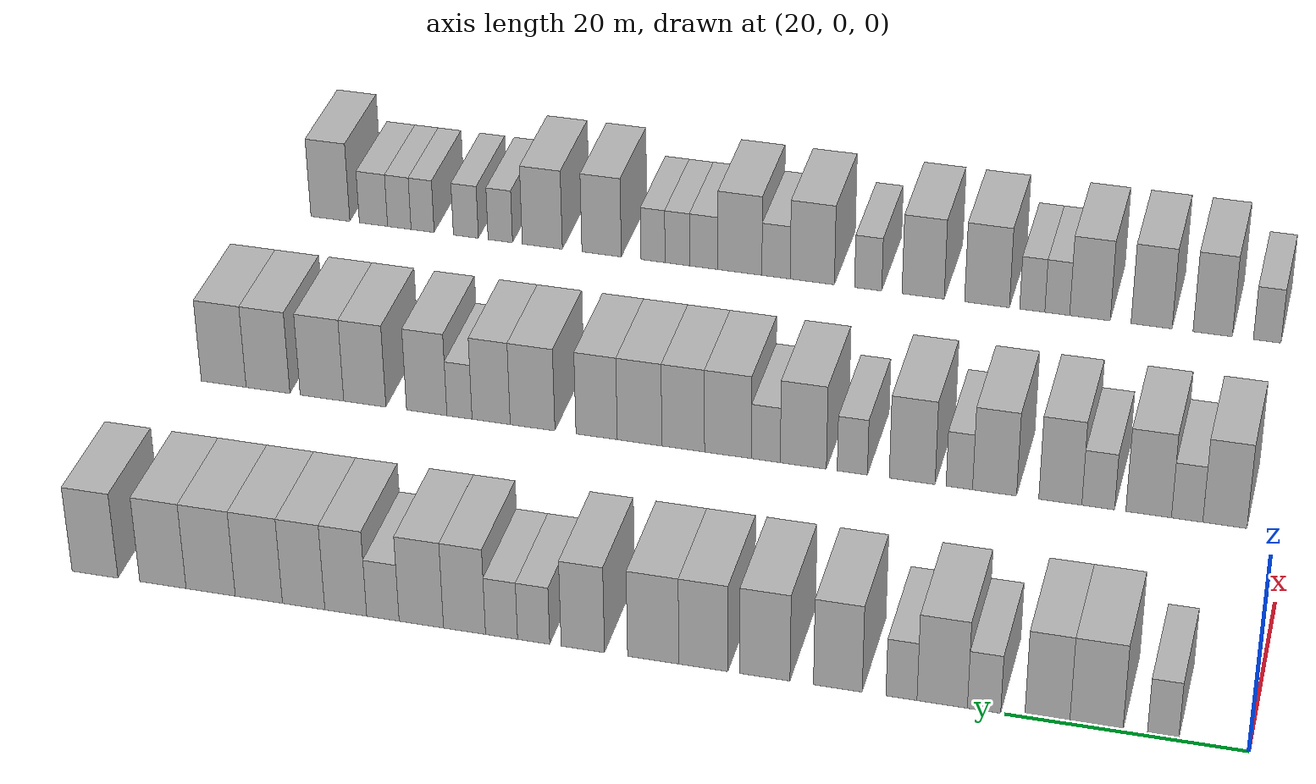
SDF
<sdf version="1.6">
 <world name="default">
  <model name="building_72">
   <static>1</static>
   <pose>25.0000 7.0259 0 0.000000 0.000000 0.000000</pose>
   <link name="link">
    <pose>0 0 3.00 0 0 0</pose>
    <collision name="collision"><geometry><box><size>10.0000 2.5747 6.0000</size></box></geometry></collision>
    <visual name="visual">
     <cast_shadows>0</cast_shadows>
     <geometry><box><size>10.0000 2.5747 6.0000</size></box></geometry>
     <material>
      <script>
       <uri>model://HANNAS_wall/materials/scripts</uri>
       <uri>model://HANNAS_wall/materials/textures</uri>
       <name>vrc/HANNAS_wall</name>
      </script>
     </material>
    </visual>
   </link>
  </model>
  <model name="building_73">
   <static>1</static>
   <pose>25.0000 12.4999 0 0.000000 0.000000 0.000000</pose>
   <link name="link">
    <pose>0 0 4.50 0 0 0</pose>
    <collision name="collision"><geometry><box><size>10.0000 4.3732 9.0000</size></box></geometry></collision>
    <visual name="visual">
     <cast_shadows>0</cast_shadows>
     <geometry><box><size>10.0000 4.3732 9.0000</size></box></geometry>
     <material>
      <script>
       <uri>model://HANNAS_wall/materials/scripts</uri>
       <uri>model://HANNAS_wall/materials/textures</uri>
       <name>vrc/HANNAS_wall</name>
      </script>
     </material>
    </visual>
   </link>
  </model>
  <model name="building_74">
   <static>1</static>
   <pose>25.0000 16.5477 0 0.000000 0.000000 0.000000</pose>
   <link name="link">
    <pose>0 0 4.50 0 0 0</pose>
    <collision name="collision"><geometry><box><size>10.0000 3.7223 9.0000</size></box></geometry></collision>
    <visual name="visual">
     <cast_shadows>0</cast_shadows>
     <geometry><box><size>10.0000 3.7223 9.0000</size></box></geometry>
     <material>
      <script>
       <uri>model://HANNAS_wall/materials/scripts</uri>
       <uri>model://HANNAS_wall/materials/textures</uri>
       <name>vrc/HANNAS_wall</name>
      </script>
     </material>
    </visual>
   </link>
  </model>
  <model name="building_75">
   <static>1</static>
   <pose>25.0000 21.7971 0 0.000000 0.000000 0.000000</pose>
   <link name="link">
    <pose>0 0 3.00 0 0 0</pose>
    <collision name="collision"><geometry><box><size>10.0000 2.7764 6.0000</size></box></geometry></collision>
    <visual name="visual">
     <cast_shadows>0</cast_shadows>
     <geometry><box><size>10.0000 2.7764 6.0000</size></box></geometry>
     <material>
      <script>
       <uri>model://HANNAS_wall/materials/scripts</uri>
       <uri>model://HANNAS_wall/materials/textures</uri>
       <name>vrc/HANNAS_wall</name>
      </script>
     </material>
    </visual>
   </link>
  </model>
  <model name="building_76">
   <static>1</static>
   <pose>25.0000 25.2983 0 0.000000 0.000000 0.000000</pose>
   <link name="link">
    <pose>0 0 4.50 0 0 0</pose>
    <collision name="collision"><geometry><box><size>10.0000 4.2261 9.0000</size></box></geometry></collision>
    <visual name="visual">
     <cast_shadows>0</cast_shadows>
     <geometry><box><size>10.0000 4.2261 9.0000</size></box></geometry>
     <material>
      <script>
       <uri>model://HANNAS_wall/materials/scripts</uri>
       <uri>model://HANNAS_wall/materials/textures</uri>
       <name>vrc/HANNAS_wall</name>
      </script>
     </material>
    </visual>
   </link>
  </model>
  <model name="building_77">
   <static>1</static>
   <pose>25.0000 28.7182 0 0.000000 0.000000 0.000000</pose>
   <link name="link">
    <pose>0 0 3.00 0 0 0</pose>
    <collision name="collision"><geometry><box><size>10.0000 2.6137 6.0000</size></box></geometry></collision>
    <visual name="visual">
     <cast_shadows>0</cast_shadows>
     <geometry><box><size>10.0000 2.6137 6.0000</size></box></geometry>
     <material>
      <script>
       <uri>model://HANNAS_wall/materials/scripts</uri>
       <uri>model://HANNAS_wall/materials/textures</uri>
       <name>vrc/HANNAS_wall</name>
      </script>
     </material>
    </visual>
   </link>
  </model>
  <model name="building_78">
   <static>1</static>
   <pose>25.0000 34.0914 0 0.000000 0.000000 0.000000</pose>
   <link name="link">
    <pose>0 0 4.50 0 0 0</pose>
    <collision name="collision"><geometry><box><size>10.0000 4.1329 9.0000</size></box></geometry></collision>
    <visual name="visual">
     <cast_shadows>0</cast_shadows>
     <geometry><box><size>10.0000 4.1329 9.0000</size></box></geometry>
     <material>
      <script>
       <uri>model://HANNAS_wall/materials/scripts</uri>
       <uri>model://HANNAS_wall/materials/textures</uri>
       <name>vrc/HANNAS_wall</name>
      </script>
     </material>
    </visual>
   </link>
  </model>
  <model name="building_79">
   <static>1</static>
   <pose>25.0000 40.3118 0 0.000000 0.000000 0.000000</pose>
   <link name="link">
    <pose>0 0 4.50 0 0 0</pose>
    <collision name="collision"><geometry><box><size>10.0000 4.3079 9.0000</size></box></geometry></collision>
    <visual name="visual">
     <cast_shadows>0</cast_shadows>
     <geometry><box><size>10.0000 4.3079 9.0000</size></box></geometry>
     <material>
      <script>
       <uri>model://HANNAS_wall/materials/scripts</uri>
       <uri>model://HANNAS_wall/materials/textures</uri>
       <name>vrc/HANNAS_wall</name>
      </script>
     </material>
    </visual>
   </link>
  </model>
  <model name="building_80">
   <static>1</static>
   <pose>25.0000 45.5788 0 0.000000 0.000000 0.000000</pose>
   <link name="link">
    <pose>0 0 4.50 0 0 0</pose>
    <collision name="collision"><geometry><box><size>10.0000 4.2260 9.0000</size></box></geometry></collision>
    <visual name="visual">
     <cast_shadows>0</cast_shadows>
     <geometry><box><size>10.0000 4.2260 9.0000</size></box></geometry>
     <material>
      <script>
       <uri>model://HANNAS_wall/materials/scripts</uri>
       <uri>model://HANNAS_wall/materials/textures</uri>
       <name>vrc/HANNAS_wall</name>
      </script>
     </material>
    </visual>
   </link>
  </model>
  <model name="building_81">
   <static>1</static>
   <pose>25.0000 49.9076 0 0.000000 0.000000 0.000000</pose>
   <link name="link">
    <pose>0 0 4.50 0 0 0</pose>
    <collision name="collision"><geometry><box><size>10.0000 4.4317 9.0000</size></box></geometry></collision>
    <visual name="visual">
     <cast_shadows>0</cast_shadows>
     <geometry><box><size>10.0000 4.4317 9.0000</size></box></geometry>
     <material>
      <script>
       <uri>model://HANNAS_wall/materials/scripts</uri>
       <uri>model://HANNAS_wall/materials/textures</uri>
       <name>vrc/HANNAS_wall</name>
      </script>
     </material>
    </visual>
   </link>
  </model>
  <model name="building_82">
   <static>1</static>
   <pose>25.0000 56.0168 0 0.000000 0.000000 0.000000</pose>
   <link name="link">
    <pose>0 0 4.50 0 0 0</pose>
    <collision name="collision"><geometry><box><size>10.0000 3.7868 9.0000</size></box></geometry></collision>
    <visual name="visual">
     <cast_shadows>0</cast_shadows>
     <geometry><box><size>10.0000 3.7868 9.0000</size></box></geometry>
     <material>
      <script>
       <uri>model://HANNAS_wall/materials/scripts</uri>
       <uri>model://HANNAS_wall/materials/textures</uri>
       <name>vrc/HANNAS_wall</name>
      </script>
     </material>
    </visual>
   </link>
  </model>
  <model name="building_83">
   <static>1</static>
   <pose>25.0000 60.3226 0 0.000000 0.000000 0.000000</pose>
   <link name="link">
    <pose>0 0 3.00 0 0 0</pose>
    <collision name="collision"><geometry><box><size>10.0000 2.8248 6.0000</size></box></geometry></collision>
    <visual name="visual">
     <cast_shadows>0</cast_shadows>
     <geometry><box><size>10.0000 2.8248 6.0000</size></box></geometry>
     <material>
      <script>
       <uri>model://HANNAS_wall/materials/scripts</uri>
       <uri>model://HANNAS_wall/materials/textures</uri>
       <name>vrc/HANNAS_wall</name>
      </script>
     </material>
    </visual>
   </link>
  </model>
  <model name="building_84">
   <static>1</static>
   <pose>25.0000 63.1462 0 0.000000 0.000000 0.000000</pose>
   <link name="link">
    <pose>0 0 3.00 0 0 0</pose>
    <collision name="collision"><geometry><box><size>10.0000 2.8224 6.0000</size></box></geometry></collision>
    <visual name="visual">
     <cast_shadows>0</cast_shadows>
     <geometry><box><size>10.0000 2.8224 6.0000</size></box></geometry>
     <material>
      <script>
       <uri>model://HANNAS_wall/materials/scripts</uri>
       <uri>model://HANNAS_wall/materials/textures</uri>
       <name>vrc/HANNAS_wall</name>
      </script>
     </material>
    </visual>
   </link>
  </model>
  <model name="building_85">
   <static>1</static>
   <pose>25.0000 66.4141 0 0.000000 0.000000 0.000000</pose>
   <link name="link">
    <pose>0 0 4.50 0 0 0</pose>
    <collision name="collision"><geometry><box><size>10.0000 3.7135 9.0000</size></box></geometry></collision>
    <visual name="visual">
     <cast_shadows>0</cast_shadows>
     <geometry><box><size>10.0000 3.7135 9.0000</size></box></geometry>
     <material>
      <script>
       <uri>model://HANNAS_wall/materials/scripts</uri>
       <uri>model://HANNAS_wall/materials/textures</uri>
       <name>vrc/HANNAS_wall</name>
      </script>
     </material>
    </visual>
   </link>
  </model>
  <model name="building_86">
   <static>1</static>
   <pose>25.0000 70.2426 0 0.000000 0.000000 0.000000</pose>
   <link name="link">
    <pose>0 0 4.50 0 0 0</pose>
    <collision name="collision"><geometry><box><size>10.0000 3.9434 9.0000</size></box></geometry></collision>
    <visual name="visual">
     <cast_shadows>0</cast_shadows>
     <geometry><box><size>10.0000 3.9434 9.0000</size></box></geometry>
     <material>
      <script>
       <uri>model://HANNAS_wall/materials/scripts</uri>
       <uri>model://HANNAS_wall/materials/textures</uri>
       <name>vrc/HANNAS_wall</name>
      </script>
     </material>
    </visual>
   </link>
  </model>
  <model name="building_87">
   <static>1</static>
   <pose>25.0000 73.6612 0 0.000000 0.000000 0.000000</pose>
   <link name="link">
    <pose>0 0 3.00 0 0 0</pose>
    <collision name="collision"><geometry><box><size>10.0000 2.8939 6.0000</size></box></geometry></collision>
    <visual name="visual">
     <cast_shadows>0</cast_shadows>
     <geometry><box><size>10.0000 2.8939 6.0000</size></box></geometry>
     <material>
      <script>
       <uri>model://HANNAS_wall/materials/scripts</uri>
       <uri>model://HANNAS_wall/materials/textures</uri>
       <name>vrc/HANNAS_wall</name>
      </script>
     </material>
    </visual>
   </link>
  </model>
  <model name="building_88">
   <static>1</static>
   <pose>25.0000 76.9845 0 0.000000 0.000000 0.000000</pose>
   <link name="link">
    <pose>0 0 4.50 0 0 0</pose>
    <collision name="collision"><geometry><box><size>10.0000 3.7528 9.0000</size></box></geometry></collision>
    <visual name="visual">
     <cast_shadows>0</cast_shadows>
     <geometry><box><size>10.0000 3.7528 9.0000</size></box></geometry>
     <material>
      <script>
       <uri>model://HANNAS_wall/materials/scripts</uri>
       <uri>model://HANNAS_wall/materials/textures</uri>
       <name>vrc/HANNAS_wall</name>
      </script>
     </material>
    </visual>
   </link>
  </model>
  <model name="building_89">
   <static>1</static>
   <pose>25.0000 80.7704 0 0.000000 0.000000 0.000000</pose>
   <link name="link">
    <pose>0 0 4.50 0 0 0</pose>
    <collision name="collision"><geometry><box><size>10.0000 3.8189 9.0000</size></box></geometry></collision>
    <visual name="visual">
     <cast_shadows>0</cast_shadows>
     <geometry><box><size>10.0000 3.8189 9.0000</size></box></geometry>
     <material>
      <script>
       <uri>model://HANNAS_wall/materials/scripts</uri>
       <uri>model://HANNAS_wall/materials/textures</uri>
       <name>vrc/HANNAS_wall</name>
      </script>
     </material>
    </visual>
   </link>
  </model>
  <model name="building_90">
   <static>1</static>
   <pose>25.0000 84.8143 0 0.000000 0.000000 0.000000</pose>
   <link name="link">
    <pose>0 0 4.50 0 0 0</pose>
    <collision name="collision"><geometry><box><size>10.0000 4.2689 9.0000</size></box></geometry></collision>
    <visual name="visual">
     <cast_shadows>0</cast_shadows>
     <geometry><box><size>10.0000 4.2689 9.0000</size></box></geometry>
     <material>
      <script>
       <uri>model://HANNAS_wall/materials/scripts</uri>
       <uri>model://HANNAS_wall/materials/textures</uri>
       <name>vrc/HANNAS_wall</name>
      </script>
     </material>
    </visual>
   </link>
  </model>
  <model name="building_91">
   <static>1</static>
   <pose>25.0000 89.1890 0 0.000000 0.000000 0.000000</pose>
   <link name="link">
    <pose>0 0 4.50 0 0 0</pose>
    <collision name="collision"><geometry><box><size>10.0000 4.4805 9.0000</size></box></geometry></collision>
    <visual name="visual">
     <cast_shadows>0</cast_shadows>
     <geometry><box><size>10.0000 4.4805 9.0000</size></box></geometry>
     <material>
      <script>
       <uri>model://HANNAS_wall/materials/scripts</uri>
       <uri>model://HANNAS_wall/materials/textures</uri>
       <name>vrc/HANNAS_wall</name>
      </script>
     </material>
    </visual>
   </link>
  </model>
  <model name="building_92">
   <static>1</static>
   <pose>25.0000 93.5502 0 0.000000 0.000000 0.000000</pose>
   <link name="link">
    <pose>0 0 4.50 0 0 0</pose>
    <collision name="collision"><geometry><box><size>10.0000 4.2420 9.0000</size></box></geometry></collision>
    <visual name="visual">
     <cast_shadows>0</cast_shadows>
     <geometry><box><size>10.0000 4.2420 9.0000</size></box></geometry>
     <material>
      <script>
       <uri>model://HANNAS_wall/materials/scripts</uri>
       <uri>model://HANNAS_wall/materials/textures</uri>
       <name>vrc/HANNAS_wall</name>
      </script>
     </material>
    </visual>
   </link>
  </model>
  <model name="building_93">
   <static>1</static>
   <pose>25.0000 99.7878 0 0.000000 0.000000 0.000000</pose>
   <link name="link">
    <pose>0 0 4.50 0 0 0</pose>
    <collision name="collision"><geometry><box><size>10.0000 4.2331 9.0000</size></box></geometry></collision>
    <visual name="visual">
     <cast_shadows>0</cast_shadows>
     <geometry><box><size>10.0000 4.2331 9.0000</size></box></geometry>
     <material>
      <script>
       <uri>model://HANNAS_wall/materials/scripts</uri>
       <uri>model://HANNAS_wall/materials/textures</uri>
       <name>vrc/HANNAS_wall</name>
      </script>
     </material>
    </visual>
   </link>
  </model>
  <model name="building_198">
   <static>1</static>
   <pose>55.0000 5.5393 0 0.000000 0.000000 0.000000</pose>
   <link name="link">
    <pose>0 0 4.50 0 0 0</pose>
    <collision name="collision"><geometry><box><size>10.0000 3.9011 9.0000</size></box></geometry></collision>
    <visual name="visual">
     <cast_shadows>0</cast_shadows>
     <geometry><box><size>10.0000 3.9011 9.0000</size></box></geometry>
     <material>
      <script>
       <uri>model://HANNAS_wall/materials/scripts</uri>
       <uri>model://HANNAS_wall/materials/textures</uri>
       <name>vrc/HANNAS_wall</name>
      </script>
     </material>
    </visual>
   </link>
  </model>
  <model name="building_199">
   <static>1</static>
   <pose>55.0000 8.8799 0 0.000000 0.000000 0.000000</pose>
   <link name="link">
    <pose>0 0 3.00 0 0 0</pose>
    <collision name="collision"><geometry><box><size>10.0000 2.7799 6.0000</size></box></geometry></collision>
    <visual name="visual">
     <cast_shadows>0</cast_shadows>
     <geometry><box><size>10.0000 2.7799 6.0000</size></box></geometry>
     <material>
      <script>
       <uri>model://HANNAS_wall/materials/scripts</uri>
       <uri>model://HANNAS_wall/materials/textures</uri>
       <name>vrc/HANNAS_wall</name>
      </script>
     </material>
    </visual>
   </link>
  </model>
  <model name="building_200">
   <static>1</static>
   <pose>55.0000 12.2966 0 0.000000 0.000000 0.000000</pose>
   <link name="link">
    <pose>0 0 4.50 0 0 0</pose>
    <collision name="collision"><geometry><box><size>10.0000 4.0535 9.0000</size></box></geometry></collision>
    <visual name="visual">
     <cast_shadows>0</cast_shadows>
     <geometry><box><size>10.0000 4.0535 9.0000</size></box></geometry>
     <material>
      <script>
       <uri>model://HANNAS_wall/materials/scripts</uri>
       <uri>model://HANNAS_wall/materials/textures</uri>
       <name>vrc/HANNAS_wall</name>
      </script>
     </material>
    </visual>
   </link>
  </model>
  <model name="building_201">
   <static>1</static>
   <pose>55.0000 16.7907 0 0.000000 0.000000 0.000000</pose>
   <link name="link">
    <pose>0 0 3.00 0 0 0</pose>
    <collision name="collision"><geometry><box><size>10.0000 2.9347 6.0000</size></box></geometry></collision>
    <visual name="visual">
     <cast_shadows>0</cast_shadows>
     <geometry><box><size>10.0000 2.9347 6.0000</size></box></geometry>
     <material>
      <script>
       <uri>model://HANNAS_wall/materials/scripts</uri>
       <uri>model://HANNAS_wall/materials/textures</uri>
       <name>vrc/HANNAS_wall</name>
      </script>
     </material>
    </visual>
   </link>
  </model>
  <model name="building_202">
   <static>1</static>
   <pose>55.0000 20.1926 0 0.000000 0.000000 0.000000</pose>
   <link name="link">
    <pose>0 0 4.50 0 0 0</pose>
    <collision name="collision"><geometry><box><size>10.0000 3.8692 9.0000</size></box></geometry></collision>
    <visual name="visual">
     <cast_shadows>0</cast_shadows>
     <geometry><box><size>10.0000 3.8692 9.0000</size></box></geometry>
     <material>
      <script>
       <uri>model://HANNAS_wall/materials/scripts</uri>
       <uri>model://HANNAS_wall/materials/textures</uri>
       <name>vrc/HANNAS_wall</name>
      </script>
     </material>
    </visual>
   </link>
  </model>
  <model name="building_203">
   <static>1</static>
   <pose>55.0000 26.1217 0 0.000000 0.000000 0.000000</pose>
   <link name="link">
    <pose>0 0 4.50 0 0 0</pose>
    <collision name="collision"><geometry><box><size>10.0000 3.9889 9.0000</size></box></geometry></collision>
    <visual name="visual">
     <cast_shadows>0</cast_shadows>
     <geometry><box><size>10.0000 3.9889 9.0000</size></box></geometry>
     <material>
      <script>
       <uri>model://HANNAS_wall/materials/scripts</uri>
       <uri>model://HANNAS_wall/materials/textures</uri>
       <name>vrc/HANNAS_wall</name>
      </script>
     </material>
    </visual>
   </link>
  </model>
  <model name="building_204">
   <static>1</static>
   <pose>55.0000 29.3165 0 0.000000 0.000000 0.000000</pose>
   <link name="link">
    <pose>0 0 3.00 0 0 0</pose>
    <collision name="collision"><geometry><box><size>10.0000 2.4008 6.0000</size></box></geometry></collision>
    <visual name="visual">
     <cast_shadows>0</cast_shadows>
     <geometry><box><size>10.0000 2.4008 6.0000</size></box></geometry>
     <material>
      <script>
       <uri>model://HANNAS_wall/materials/scripts</uri>
       <uri>model://HANNAS_wall/materials/textures</uri>
       <name>vrc/HANNAS_wall</name>
      </script>
     </material>
    </visual>
   </link>
  </model>
  <model name="building_205">
   <static>1</static>
   <pose>55.0000 33.6114 0 0.000000 0.000000 0.000000</pose>
   <link name="link">
    <pose>0 0 4.50 0 0 0</pose>
    <collision name="collision"><geometry><box><size>10.0000 4.1890 9.0000</size></box></geometry></collision>
    <visual name="visual">
     <cast_shadows>0</cast_shadows>
     <geometry><box><size>10.0000 4.1890 9.0000</size></box></geometry>
     <material>
      <script>
       <uri>model://HANNAS_wall/materials/scripts</uri>
       <uri>model://HANNAS_wall/materials/textures</uri>
       <name>vrc/HANNAS_wall</name>
      </script>
     </material>
    </visual>
   </link>
  </model>
  <model name="building_206">
   <static>1</static>
   <pose>55.0000 39.0952 0 0.000000 0.000000 0.000000</pose>
   <link name="link">
    <pose>0 0 3.00 0 0 0</pose>
    <collision name="collision"><geometry><box><size>10.0000 2.7786 6.0000</size></box></geometry></collision>
    <visual name="visual">
     <cast_shadows>0</cast_shadows>
     <geometry><box><size>10.0000 2.7786 6.0000</size></box></geometry>
     <material>
      <script>
       <uri>model://HANNAS_wall/materials/scripts</uri>
       <uri>model://HANNAS_wall/materials/textures</uri>
       <name>vrc/HANNAS_wall</name>
      </script>
     </material>
    </visual>
   </link>
  </model>
  <model name="building_207">
   <static>1</static>
   <pose>55.0000 43.6165 0 0.000000 0.000000 0.000000</pose>
   <link name="link">
    <pose>0 0 4.50 0 0 0</pose>
    <collision name="collision"><geometry><box><size>10.0000 4.2639 9.0000</size></box></geometry></collision>
    <visual name="visual">
     <cast_shadows>0</cast_shadows>
     <geometry><box><size>10.0000 4.2639 9.0000</size></box></geometry>
     <material>
      <script>
       <uri>model://HANNAS_wall/materials/scripts</uri>
       <uri>model://HANNAS_wall/materials/textures</uri>
       <name>vrc/HANNAS_wall</name>
      </script>
     </material>
    </visual>
   </link>
  </model>
  <model name="building_208">
   <static>1</static>
   <pose>55.0000 47.0865 0 0.000000 0.000000 0.000000</pose>
   <link name="link">
    <pose>0 0 3.00 0 0 0</pose>
    <collision name="collision"><geometry><box><size>10.0000 2.6760 6.0000</size></box></geometry></collision>
    <visual name="visual">
     <cast_shadows>0</cast_shadows>
     <geometry><box><size>10.0000 2.6760 6.0000</size></box></geometry>
     <material>
      <script>
       <uri>model://HANNAS_wall/materials/scripts</uri>
       <uri>model://HANNAS_wall/materials/textures</uri>
       <name>vrc/HANNAS_wall</name>
      </script>
     </material>
    </visual>
   </link>
  </model>
  <model name="building_209">
   <static>1</static>
   <pose>55.0000 50.6077 0 0.000000 0.000000 0.000000</pose>
   <link name="link">
    <pose>0 0 4.50 0 0 0</pose>
    <collision name="collision"><geometry><box><size>10.0000 4.3664 9.0000</size></box></geometry></collision>
    <visual name="visual">
     <cast_shadows>0</cast_shadows>
     <geometry><box><size>10.0000 4.3664 9.0000</size></box></geometry>
     <material>
      <script>
       <uri>model://HANNAS_wall/materials/scripts</uri>
       <uri>model://HANNAS_wall/materials/textures</uri>
       <name>vrc/HANNAS_wall</name>
      </script>
     </material>
    </visual>
   </link>
  </model>
  <model name="building_210">
   <static>1</static>
   <pose>55.0000 54.7899 0 0.000000 0.000000 0.000000</pose>
   <link name="link">
    <pose>0 0 4.50 0 0 0</pose>
    <collision name="collision"><geometry><box><size>10.0000 3.9979 9.0000</size></box></geometry></collision>
    <visual name="visual">
     <cast_shadows>0</cast_shadows>
     <geometry><box><size>10.0000 3.9979 9.0000</size></box></geometry>
     <material>
      <script>
       <uri>model://HANNAS_wall/materials/scripts</uri>
       <uri>model://HANNAS_wall/materials/textures</uri>
       <name>vrc/HANNAS_wall</name>
      </script>
     </material>
    </visual>
   </link>
  </model>
  <model name="building_211">
   <static>1</static>
   <pose>55.0000 58.8880 0 0.000000 0.000000 0.000000</pose>
   <link name="link">
    <pose>0 0 4.50 0 0 0</pose>
    <collision name="collision"><geometry><box><size>10.0000 4.1985 9.0000</size></box></geometry></collision>
    <visual name="visual">
     <cast_shadows>0</cast_shadows>
     <geometry><box><size>10.0000 4.1985 9.0000</size></box></geometry>
     <material>
      <script>
       <uri>model://HANNAS_wall/materials/scripts</uri>
       <uri>model://HANNAS_wall/materials/textures</uri>
       <name>vrc/HANNAS_wall</name>
      </script>
     </material>
    </visual>
   </link>
  </model>
  <model name="building_212">
   <static>1</static>
   <pose>55.0000 62.9421 0 0.000000 0.000000 0.000000</pose>
   <link name="link">
    <pose>0 0 4.50 0 0 0</pose>
    <collision name="collision"><geometry><box><size>10.0000 3.9097 9.0000</size></box></geometry></collision>
    <visual name="visual">
     <cast_shadows>0</cast_shadows>
     <geometry><box><size>10.0000 3.9097 9.0000</size></box></geometry>
     <material>
      <script>
       <uri>model://HANNAS_wall/materials/scripts</uri>
       <uri>model://HANNAS_wall/materials/textures</uri>
       <name>vrc/HANNAS_wall</name>
      </script>
     </material>
    </visual>
   </link>
  </model>
  <model name="building_213">
   <static>1</static>
   <pose>55.0000 69.0286 0 0.000000 0.000000 0.000000</pose>
   <link name="link">
    <pose>0 0 4.50 0 0 0</pose>
    <collision name="collision"><geometry><box><size>10.0000 4.2633 9.0000</size></box></geometry></collision>
    <visual name="visual">
     <cast_shadows>0</cast_shadows>
     <geometry><box><size>10.0000 4.2633 9.0000</size></box></geometry>
     <material>
      <script>
       <uri>model://HANNAS_wall/materials/scripts</uri>
       <uri>model://HANNAS_wall/materials/textures</uri>
       <name>vrc/HANNAS_wall</name>
      </script>
     </material>
    </visual>
   </link>
  </model>
  <model name="building_214">
   <static>1</static>
   <pose>55.0000 72.9879 0 0.000000 0.000000 0.000000</pose>
   <link name="link">
    <pose>0 0 4.50 0 0 0</pose>
    <collision name="collision"><geometry><box><size>10.0000 3.6551 9.0000</size></box></geometry></collision>
    <visual name="visual">
     <cast_shadows>0</cast_shadows>
     <geometry><box><size>10.0000 3.6551 9.0000</size></box></geometry>
     <material>
      <script>
       <uri>model://HANNAS_wall/materials/scripts</uri>
       <uri>model://HANNAS_wall/materials/textures</uri>
       <name>vrc/HANNAS_wall</name>
      </script>
     </material>
    </visual>
   </link>
  </model>
  <model name="building_215">
   <static>1</static>
   <pose>55.0000 76.0224 0 0.000000 0.000000 0.000000</pose>
   <link name="link">
    <pose>0 0 3.00 0 0 0</pose>
    <collision name="collision"><geometry><box><size>10.0000 2.4139 6.0000</size></box></geometry></collision>
    <visual name="visual">
     <cast_shadows>0</cast_shadows>
     <geometry><box><size>10.0000 2.4139 6.0000</size></box></geometry>
     <material>
      <script>
       <uri>model://HANNAS_wall/materials/scripts</uri>
       <uri>model://HANNAS_wall/materials/textures</uri>
       <name>vrc/HANNAS_wall</name>
      </script>
     </material>
    </visual>
   </link>
  </model>
  <model name="building_216">
   <static>1</static>
   <pose>55.0000 79.1768 0 0.000000 0.000000 0.000000</pose>
   <link name="link">
    <pose>0 0 4.50 0 0 0</pose>
    <collision name="collision"><geometry><box><size>10.0000 3.8951 9.0000</size></box></geometry></collision>
    <visual name="visual">
     <cast_shadows>0</cast_shadows>
     <geometry><box><size>10.0000 3.8951 9.0000</size></box></geometry>
     <material>
      <script>
       <uri>model://HANNAS_wall/materials/scripts</uri>
       <uri>model://HANNAS_wall/materials/textures</uri>
       <name>vrc/HANNAS_wall</name>
      </script>
     </material>
    </visual>
   </link>
  </model>
  <model name="building_217">
   <static>1</static>
   <pose>55.0000 85.1735 0 0.000000 0.000000 0.000000</pose>
   <link name="link">
    <pose>0 0 4.50 0 0 0</pose>
    <collision name="collision"><geometry><box><size>10.0000 4.0982 9.0000</size></box></geometry></collision>
    <visual name="visual">
     <cast_shadows>0</cast_shadows>
     <geometry><box><size>10.0000 4.0982 9.0000</size></box></geometry>
     <material>
      <script>
       <uri>model://HANNAS_wall/materials/scripts</uri>
       <uri>model://HANNAS_wall/materials/textures</uri>
       <name>vrc/HANNAS_wall</name>
      </script>
     </material>
    </visual>
   </link>
  </model>
  <model name="building_218">
   <static>1</static>
   <pose>55.0000 89.3496 0 0.000000 0.000000 0.000000</pose>
   <link name="link">
    <pose>0 0 4.50 0 0 0</pose>
    <collision name="collision"><geometry><box><size>10.0000 4.2541 9.0000</size></box></geometry></collision>
    <visual name="visual">
     <cast_shadows>0</cast_shadows>
     <geometry><box><size>10.0000 4.2541 9.0000</size></box></geometry>
     <material>
      <script>
       <uri>model://HANNAS_wall/materials/scripts</uri>
       <uri>model://HANNAS_wall/materials/textures</uri>
       <name>vrc/HANNAS_wall</name>
      </script>
     </material>
    </visual>
   </link>
  </model>
  <model name="building_219">
   <static>1</static>
   <pose>55.0000 94.6307 0 0.000000 0.000000 0.000000</pose>
   <link name="link">
    <pose>0 0 4.50 0 0 0</pose>
    <collision name="collision"><geometry><box><size>10.0000 4.3081 9.0000</size></box></geometry></collision>
    <visual name="visual">
     <cast_shadows>0</cast_shadows>
     <geometry><box><size>10.0000 4.3081 9.0000</size></box></geometry>
     <material>
      <script>
       <uri>model://HANNAS_wall/materials/scripts</uri>
       <uri>model://HANNAS_wall/materials/textures</uri>
       <name>vrc/HANNAS_wall</name>
      </script>
     </material>
    </visual>
   </link>
  </model>
  <model name="building_220">
   <static>1</static>
   <pose>55.0000 98.9957 0 0.000000 0.000000 0.000000</pose>
   <link name="link">
    <pose>0 0 4.50 0 0 0</pose>
    <collision name="collision"><geometry><box><size>10.0000 4.4219 9.0000</size></box></geometry></collision>
    <visual name="visual">
     <cast_shadows>0</cast_shadows>
     <geometry><box><size>10.0000 4.4219 9.0000</size></box></geometry>
     <material>
      <script>
       <uri>model://HANNAS_wall/materials/scripts</uri>
       <uri>model://HANNAS_wall/materials/textures</uri>
       <name>vrc/HANNAS_wall</name>
      </script>
     </material>
    </visual>
   </link>
  </model>
  <model name="building_340">
   <static>1</static>
   <pose>85.0000 5.0789 0 0.000000 0.000000 0.000000</pose>
   <link name="link">
    <pose>0 0 3.00 0 0 0</pose>
    <collision name="collision"><geometry><box><size>10.0000 2.6269 6.0000</size></box></geometry></collision>
    <visual name="visual">
     <cast_shadows>0</cast_shadows>
     <geometry><box><size>10.0000 2.6269 6.0000</size></box></geometry>
     <material>
      <script>
       <uri>model://HANNAS_wall/materials/scripts</uri>
       <uri>model://HANNAS_wall/materials/textures</uri>
       <name>vrc/HANNAS_wall</name>
      </script>
     </material>
    </visual>
   </link>
  </model>
  <model name="building_341">
   <static>1</static>
   <pose>85.0000 10.2651 0 0.000000 0.000000 0.000000</pose>
   <link name="link">
    <pose>0 0 4.50 0 0 0</pose>
    <collision name="collision"><geometry><box><size>10.0000 3.7456 9.0000</size></box></geometry></collision>
    <visual name="visual">
     <cast_shadows>0</cast_shadows>
     <geometry><box><size>10.0000 3.7456 9.0000</size></box></geometry>
     <material>
      <script>
       <uri>model://HANNAS_wall/materials/scripts</uri>
       <uri>model://HANNAS_wall/materials/textures</uri>
       <name>vrc/HANNAS_wall</name>
      </script>
     </material>
    </visual>
   </link>
  </model>
  <model name="building_342">
   <static>1</static>
   <pose>85.0000 16.1128 0 0.000000 0.000000 0.000000</pose>
   <link name="link">
    <pose>0 0 4.50 0 0 0</pose>
    <collision name="collision"><geometry><box><size>10.0000 3.9498 9.0000</size></box></geometry></collision>
    <visual name="visual">
     <cast_shadows>0</cast_shadows>
     <geometry><box><size>10.0000 3.9498 9.0000</size></box></geometry>
     <material>
      <script>
       <uri>model://HANNAS_wall/materials/scripts</uri>
       <uri>model://HANNAS_wall/materials/textures</uri>
       <name>vrc/HANNAS_wall</name>
      </script>
     </material>
    </visual>
   </link>
  </model>
  <model name="building_343">
   <static>1</static>
   <pose>85.0000 22.0507 0 0.000000 0.000000 0.000000</pose>
   <link name="link">
    <pose>0 0 4.50 0 0 0</pose>
    <collision name="collision"><geometry><box><size>10.0000 3.9261 9.0000</size></box></geometry></collision>
    <visual name="visual">
     <cast_shadows>0</cast_shadows>
     <geometry><box><size>10.0000 3.9261 9.0000</size></box></geometry>
     <material>
      <script>
       <uri>model://HANNAS_wall/materials/scripts</uri>
       <uri>model://HANNAS_wall/materials/textures</uri>
       <name>vrc/HANNAS_wall</name>
      </script>
     </material>
    </visual>
   </link>
  </model>
  <model name="building_344">
   <static>1</static>
   <pose>85.0000 25.2169 0 0.000000 0.000000 0.000000</pose>
   <link name="link">
    <pose>0 0 3.00 0 0 0</pose>
    <collision name="collision"><geometry><box><size>10.0000 2.4063 6.0000</size></box></geometry></collision>
    <visual name="visual">
     <cast_shadows>0</cast_shadows>
     <geometry><box><size>10.0000 2.4063 6.0000</size></box></geometry>
     <material>
      <script>
       <uri>model://HANNAS_wall/materials/scripts</uri>
       <uri>model://HANNAS_wall/materials/textures</uri>
       <name>vrc/HANNAS_wall</name>
      </script>
     </material>
    </visual>
   </link>
  </model>
  <model name="building_345">
   <static>1</static>
   <pose>85.0000 27.6426 0 0.000000 0.000000 0.000000</pose>
   <link name="link">
    <pose>0 0 3.00 0 0 0</pose>
    <collision name="collision"><geometry><box><size>10.0000 2.4451 6.0000</size></box></geometry></collision>
    <visual name="visual">
     <cast_shadows>0</cast_shadows>
     <geometry><box><size>10.0000 2.4451 6.0000</size></box></geometry>
     <material>
      <script>
       <uri>model://HANNAS_wall/materials/scripts</uri>
       <uri>model://HANNAS_wall/materials/textures</uri>
       <name>vrc/HANNAS_wall</name>
      </script>
     </material>
    </visual>
   </link>
  </model>
  <model name="building_346">
   <static>1</static>
   <pose>85.0000 32.0593 0 0.000000 0.000000 0.000000</pose>
   <link name="link">
    <pose>0 0 4.50 0 0 0</pose>
    <collision name="collision"><geometry><box><size>10.0000 4.3882 9.0000</size></box></geometry></collision>
    <visual name="visual">
     <cast_shadows>0</cast_shadows>
     <geometry><box><size>10.0000 4.3882 9.0000</size></box></geometry>
     <material>
      <script>
       <uri>model://HANNAS_wall/materials/scripts</uri>
       <uri>model://HANNAS_wall/materials/textures</uri>
       <name>vrc/HANNAS_wall</name>
      </script>
     </material>
    </visual>
   </link>
  </model>
  <model name="building_347">
   <static>1</static>
   <pose>85.0000 38.3325 0 0.000000 0.000000 0.000000</pose>
   <link name="link">
    <pose>0 0 4.50 0 0 0</pose>
    <collision name="collision"><geometry><box><size>10.0000 4.1583 9.0000</size></box></geometry></collision>
    <visual name="visual">
     <cast_shadows>0</cast_shadows>
     <geometry><box><size>10.0000 4.1583 9.0000</size></box></geometry>
     <material>
      <script>
       <uri>model://HANNAS_wall/materials/scripts</uri>
       <uri>model://HANNAS_wall/materials/textures</uri>
       <name>vrc/HANNAS_wall</name>
      </script>
     </material>
    </visual>
   </link>
  </model>
  <model name="building_348">
   <static>1</static>
   <pose>85.0000 43.7588 0 0.000000 0.000000 0.000000</pose>
   <link name="link">
    <pose>0 0 3.00 0 0 0</pose>
    <collision name="collision"><geometry><box><size>10.0000 2.6943 6.0000</size></box></geometry></collision>
    <visual name="visual">
     <cast_shadows>0</cast_shadows>
     <geometry><box><size>10.0000 2.6943 6.0000</size></box></geometry>
     <material>
      <script>
       <uri>model://HANNAS_wall/materials/scripts</uri>
       <uri>model://HANNAS_wall/materials/textures</uri>
       <name>vrc/HANNAS_wall</name>
      </script>
     </material>
    </visual>
   </link>
  </model>
  <model name="building_349">
   <static>1</static>
   <pose>85.0000 49.3134 0 0.000000 0.000000 0.000000</pose>
   <link name="link">
    <pose>0 0 4.50 0 0 0</pose>
    <collision name="collision"><geometry><box><size>10.0000 4.4149 9.0000</size></box></geometry></collision>
    <visual name="visual">
     <cast_shadows>0</cast_shadows>
     <geometry><box><size>10.0000 4.4149 9.0000</size></box></geometry>
     <material>
      <script>
       <uri>model://HANNAS_wall/materials/scripts</uri>
       <uri>model://HANNAS_wall/materials/textures</uri>
       <name>vrc/HANNAS_wall</name>
      </script>
     </material>
    </visual>
   </link>
  </model>
  <model name="building_350">
   <static>1</static>
   <pose>85.0000 52.9345 0 0.000000 0.000000 0.000000</pose>
   <link name="link">
    <pose>0 0 3.00 0 0 0</pose>
    <collision name="collision"><geometry><box><size>10.0000 2.8273 6.0000</size></box></geometry></collision>
    <visual name="visual">
     <cast_shadows>0</cast_shadows>
     <geometry><box><size>10.0000 2.8273 6.0000</size></box></geometry>
     <material>
      <script>
       <uri>model://HANNAS_wall/materials/scripts</uri>
       <uri>model://HANNAS_wall/materials/textures</uri>
       <name>vrc/HANNAS_wall</name>
      </script>
     </material>
    </visual>
   </link>
  </model>
  <model name="building_351">
   <static>1</static>
   <pose>85.0000 56.5568 0 0.000000 0.000000 0.000000</pose>
   <link name="link">
    <pose>0 0 4.50 0 0 0</pose>
    <collision name="collision"><geometry><box><size>10.0000 4.4172 9.0000</size></box></geometry></collision>
    <visual name="visual">
     <cast_shadows>0</cast_shadows>
     <geometry><box><size>10.0000 4.4172 9.0000</size></box></geometry>
     <material>
      <script>
       <uri>model://HANNAS_wall/materials/scripts</uri>
       <uri>model://HANNAS_wall/materials/textures</uri>
       <name>vrc/HANNAS_wall</name>
      </script>
     </material>
    </visual>
   </link>
  </model>
  <model name="building_352">
   <static>1</static>
   <pose>85.0000 60.1952 0 0.000000 0.000000 0.000000</pose>
   <link name="link">
    <pose>0 0 3.00 0 0 0</pose>
    <collision name="collision"><geometry><box><size>10.0000 2.8596 6.0000</size></box></geometry></collision>
    <visual name="visual">
     <cast_shadows>0</cast_shadows>
     <geometry><box><size>10.0000 2.8596 6.0000</size></box></geometry>
     <material>
      <script>
       <uri>model://HANNAS_wall/materials/scripts</uri>
       <uri>model://HANNAS_wall/materials/textures</uri>
       <name>vrc/HANNAS_wall</name>
      </script>
     </material>
    </visual>
   </link>
  </model>
  <model name="building_353">
   <static>1</static>
   <pose>85.0000 62.8650 0 0.000000 0.000000 0.000000</pose>
   <link name="link">
    <pose>0 0 3.00 0 0 0</pose>
    <collision name="collision"><geometry><box><size>10.0000 2.4799 6.0000</size></box></geometry></collision>
    <visual name="visual">
     <cast_shadows>0</cast_shadows>
     <geometry><box><size>10.0000 2.4799 6.0000</size></box></geometry>
     <material>
      <script>
       <uri>model://HANNAS_wall/materials/scripts</uri>
       <uri>model://HANNAS_wall/materials/textures</uri>
       <name>vrc/HANNAS_wall</name>
      </script>
     </material>
    </visual>
   </link>
  </model>
  <model name="building_354">
   <static>1</static>
   <pose>85.0000 65.3248 0 0.000000 0.000000 0.000000</pose>
   <link name="link">
    <pose>0 0 3.00 0 0 0</pose>
    <collision name="collision"><geometry><box><size>10.0000 2.4397 6.0000</size></box></geometry></collision>
    <visual name="visual">
     <cast_shadows>0</cast_shadows>
     <geometry><box><size>10.0000 2.4397 6.0000</size></box></geometry>
     <material>
      <script>
       <uri>model://HANNAS_wall/materials/scripts</uri>
       <uri>model://HANNAS_wall/materials/textures</uri>
       <name>vrc/HANNAS_wall</name>
      </script>
     </material>
    </visual>
   </link>
  </model>
  <model name="building_355">
   <static>1</static>
   <pose>85.0000 70.5585 0 0.000000 0.000000 0.000000</pose>
   <link name="link">
    <pose>0 0 4.50 0 0 0</pose>
    <collision name="collision"><geometry><box><size>10.0000 4.0277 9.0000</size></box></geometry></collision>
    <visual name="visual">
     <cast_shadows>0</cast_shadows>
     <geometry><box><size>10.0000 4.0277 9.0000</size></box></geometry>
     <material>
      <script>
       <uri>model://HANNAS_wall/materials/scripts</uri>
       <uri>model://HANNAS_wall/materials/textures</uri>
       <name>vrc/HANNAS_wall</name>
      </script>
     </material>
    </visual>
   </link>
  </model>
  <model name="building_356">
   <static>1</static>
   <pose>85.0000 76.6349 0 0.000000 0.000000 0.000000</pose>
   <link name="link">
    <pose>0 0 4.50 0 0 0</pose>
    <collision name="collision"><geometry><box><size>10.0000 4.1253 9.0000</size></box></geometry></collision>
    <visual name="visual">
     <cast_shadows>0</cast_shadows>
     <geometry><box><size>10.0000 4.1253 9.0000</size></box></geometry>
     <material>
      <script>
       <uri>model://HANNAS_wall/materials/scripts</uri>
       <uri>model://HANNAS_wall/materials/textures</uri>
       <name>vrc/HANNAS_wall</name>
      </script>
     </material>
    </visual>
   </link>
  </model>
  <model name="building_357">
   <static>1</static>
   <pose>85.0000 80.9617 0 0.000000 0.000000 0.000000</pose>
   <link name="link">
    <pose>0 0 3.00 0 0 0</pose>
    <collision name="collision"><geometry><box><size>10.0000 2.5283 6.0000</size></box></geometry></collision>
    <visual name="visual">
     <cast_shadows>0</cast_shadows>
     <geometry><box><size>10.0000 2.5283 6.0000</size></box></geometry>
     <material>
      <script>
       <uri>model://HANNAS_wall/materials/scripts</uri>
       <uri>model://HANNAS_wall/materials/textures</uri>
       <name>vrc/HANNAS_wall</name>
      </script>
     </material>
    </visual>
   </link>
  </model>
  <model name="building_358">
   <static>1</static>
   <pose>85.0000 84.5237 0 0.000000 0.000000 0.000000</pose>
   <link name="link">
    <pose>0 0 3.00 0 0 0</pose>
    <collision name="collision"><geometry><box><size>10.0000 2.5958 6.0000</size></box></geometry></collision>
    <visual name="visual">
     <cast_shadows>0</cast_shadows>
     <geometry><box><size>10.0000 2.5958 6.0000</size></box></geometry>
     <material>
      <script>
       <uri>model://HANNAS_wall/materials/scripts</uri>
       <uri>model://HANNAS_wall/materials/textures</uri>
       <name>vrc/HANNAS_wall</name>
      </script>
     </material>
    </visual>
   </link>
  </model>
  <model name="building_359">
   <static>1</static>
   <pose>85.0000 89.0231 0 0.000000 0.000000 0.000000</pose>
   <link name="link">
    <pose>0 0 3.00 0 0 0</pose>
    <collision name="collision"><geometry><box><size>10.0000 2.4030 6.0000</size></box></geometry></collision>
    <visual name="visual">
     <cast_shadows>0</cast_shadows>
     <geometry><box><size>10.0000 2.4030 6.0000</size></box></geometry>
     <material>
      <script>
       <uri>model://HANNAS_wall/materials/scripts</uri>
       <uri>model://HANNAS_wall/materials/textures</uri>
       <name>vrc/HANNAS_wall</name>
      </script>
     </material>
    </visual>
   </link>
  </model>
  <model name="building_360">
   <static>1</static>
   <pose>85.0000 91.4511 0 0.000000 0.000000 0.000000</pose>
   <link name="link">
    <pose>0 0 3.00 0 0 0</pose>
    <collision name="collision"><geometry><box><size>10.0000 2.4532 6.0000</size></box></geometry></collision>
    <visual name="visual">
     <cast_shadows>0</cast_shadows>
     <geometry><box><size>10.0000 2.4532 6.0000</size></box></geometry>
     <material>
      <script>
       <uri>model://HANNAS_wall/materials/scripts</uri>
       <uri>model://HANNAS_wall/materials/textures</uri>
       <name>vrc/HANNAS_wall</name>
      </script>
     </material>
    </visual>
   </link>
  </model>
  <model name="building_361">
   <static>1</static>
   <pose>85.0000 94.1562 0 0.000000 0.000000 0.000000</pose>
   <link name="link">
    <pose>0 0 3.00 0 0 0</pose>
    <collision name="collision"><geometry><box><size>10.0000 2.9570 6.0000</size></box></geometry></collision>
    <visual name="visual">
     <cast_shadows>0</cast_shadows>
     <geometry><box><size>10.0000 2.9570 6.0000</size></box></geometry>
     <material>
      <script>
       <uri>model://HANNAS_wall/materials/scripts</uri>
       <uri>model://HANNAS_wall/materials/textures</uri>
       <name>vrc/HANNAS_wall</name>
      </script>
     </material>
    </visual>
   </link>
  </model>
  <model name="building_362">
   <static>1</static>
   <pose>85.0000 98.6822 0 0.000000 0.000000 0.000000</pose>
   <link name="link">
    <pose>0 0 4.50 0 0 0</pose>
    <collision name="collision"><geometry><box><size>10.0000 4.0949 9.0000</size></box></geometry></collision>
    <visual name="visual">
     <cast_shadows>0</cast_shadows>
     <geometry><box><size>10.0000 4.0949 9.0000</size></box></geometry>
     <material>
      <script>
       <uri>model://HANNAS_wall/materials/scripts</uri>
       <uri>model://HANNAS_wall/materials/textures</uri>
       <name>vrc/HANNAS_wall</name>
      </script>
     </material>
    </visual>
   </link>
  </model>
 </world>
</sdf>
